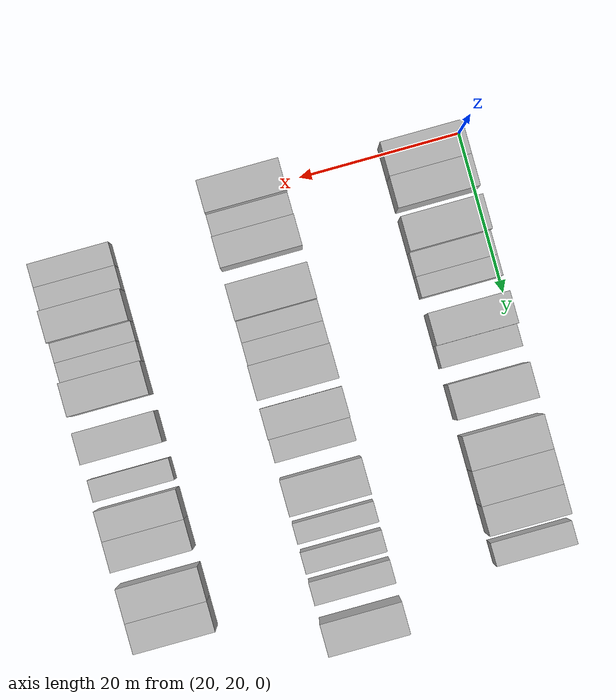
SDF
<sdf version="1.6">
 <world name="default">
  <model name="building_102">
   <static>1</static>
   <pose>25.0000 21.3331 0 0.000000 0.000000 0.000000</pose>
   <link name="link">
    <pose>0 0 4.50 0 0 0</pose>
    <collision name="collision"><geometry><box><size>10.0000 4.1596 9.0000</size></box></geometry></collision>
    <visual name="visual">
     <cast_shadows>0</cast_shadows>
     <geometry><box><size>10.0000 4.1596 9.0000</size></box></geometry>
     <material>
      <script>
       <uri>model://HANNAS_wall/materials/scripts</uri>
       <uri>model://HANNAS_wall/materials/textures</uri>
       <name>vrc/HANNAS_wall</name>
      </script>
     </material>
    </visual>
   </link>
  </model>
  <model name="building_103">
   <static>1</static>
   <pose>25.0000 25.3613 0 0.000000 0.000000 0.000000</pose>
   <link name="link">
    <pose>0 0 4.50 0 0 0</pose>
    <collision name="collision"><geometry><box><size>10.0000 3.8967 9.0000</size></box></geometry></collision>
    <visual name="visual">
     <cast_shadows>0</cast_shadows>
     <geometry><box><size>10.0000 3.8967 9.0000</size></box></geometry>
     <material>
      <script>
       <uri>model://HANNAS_wall/materials/scripts</uri>
       <uri>model://HANNAS_wall/materials/textures</uri>
       <name>vrc/HANNAS_wall</name>
      </script>
     </material>
    </visual>
   </link>
  </model>
  <model name="building_104">
   <static>1</static>
   <pose>25.0000 30.4325 0 0.000000 0.000000 0.000000</pose>
   <link name="link">
    <pose>0 0 4.50 0 0 0</pose>
    <collision name="collision"><geometry><box><size>10.0000 4.2458 9.0000</size></box></geometry></collision>
    <visual name="visual">
     <cast_shadows>0</cast_shadows>
     <geometry><box><size>10.0000 4.2458 9.0000</size></box></geometry>
     <material>
      <script>
       <uri>model://HANNAS_wall/materials/scripts</uri>
       <uri>model://HANNAS_wall/materials/textures</uri>
       <name>vrc/HANNAS_wall</name>
      </script>
     </material>
    </visual>
   </link>
  </model>
  <model name="building_105">
   <static>1</static>
   <pose>25.0000 34.0360 0 0.000000 0.000000 0.000000</pose>
   <link name="link">
    <pose>0 0 3.00 0 0 0</pose>
    <collision name="collision"><geometry><box><size>10.0000 2.9611 6.0000</size></box></geometry></collision>
    <visual name="visual">
     <cast_shadows>0</cast_shadows>
     <geometry><box><size>10.0000 2.9611 6.0000</size></box></geometry>
     <material>
      <script>
       <uri>model://HANNAS_wall/materials/scripts</uri>
       <uri>model://HANNAS_wall/materials/textures</uri>
       <name>vrc/HANNAS_wall</name>
      </script>
     </material>
    </visual>
   </link>
  </model>
  <model name="building_106">
   <static>1</static>
   <pose>25.0000 36.8038 0 0.000000 0.000000 0.000000</pose>
   <link name="link">
    <pose>0 0 3.00 0 0 0</pose>
    <collision name="collision"><geometry><box><size>10.0000 2.5746 6.0000</size></box></geometry></collision>
    <visual name="visual">
     <cast_shadows>0</cast_shadows>
     <geometry><box><size>10.0000 2.5746 6.0000</size></box></geometry>
     <material>
      <script>
       <uri>model://HANNAS_wall/materials/scripts</uri>
       <uri>model://HANNAS_wall/materials/textures</uri>
       <name>vrc/HANNAS_wall</name>
      </script>
     </material>
    </visual>
   </link>
  </model>
  <model name="building_107">
   <static>1</static>
   <pose>25.0000 42.0669 0 0.000000 0.000000 0.000000</pose>
   <link name="link">
    <pose>0 0 4.50 0 0 0</pose>
    <collision name="collision"><geometry><box><size>10.0000 3.9517 9.0000</size></box></geometry></collision>
    <visual name="visual">
     <cast_shadows>0</cast_shadows>
     <geometry><box><size>10.0000 3.9517 9.0000</size></box></geometry>
     <material>
      <script>
       <uri>model://HANNAS_wall/materials/scripts</uri>
       <uri>model://HANNAS_wall/materials/textures</uri>
       <name>vrc/HANNAS_wall</name>
      </script>
     </material>
    </visual>
   </link>
  </model>
  <model name="building_108">
   <static>1</static>
   <pose>25.0000 45.4124 0 0.000000 0.000000 0.000000</pose>
   <link name="link">
    <pose>0 0 3.00 0 0 0</pose>
    <collision name="collision"><geometry><box><size>10.0000 2.7392 6.0000</size></box></geometry></collision>
    <visual name="visual">
     <cast_shadows>0</cast_shadows>
     <geometry><box><size>10.0000 2.7392 6.0000</size></box></geometry>
     <material>
      <script>
       <uri>model://HANNAS_wall/materials/scripts</uri>
       <uri>model://HANNAS_wall/materials/textures</uri>
       <name>vrc/HANNAS_wall</name>
      </script>
     </material>
    </visual>
   </link>
  </model>
  <model name="building_109">
   <static>1</static>
   <pose>25.0000 50.9433 0 0.000000 0.000000 0.000000</pose>
   <link name="link">
    <pose>0 0 4.50 0 0 0</pose>
    <collision name="collision"><geometry><box><size>10.0000 4.3226 9.0000</size></box></geometry></collision>
    <visual name="visual">
     <cast_shadows>0</cast_shadows>
     <geometry><box><size>10.0000 4.3226 9.0000</size></box></geometry>
     <material>
      <script>
       <uri>model://HANNAS_wall/materials/scripts</uri>
       <uri>model://HANNAS_wall/materials/textures</uri>
       <name>vrc/HANNAS_wall</name>
      </script>
     </material>
    </visual>
   </link>
  </model>
  <model name="building_110">
   <static>1</static>
   <pose>25.0000 57.2245 0 0.000000 0.000000 0.000000</pose>
   <link name="link">
    <pose>0 0 4.50 0 0 0</pose>
    <collision name="collision"><geometry><box><size>10.0000 4.2398 9.0000</size></box></geometry></collision>
    <visual name="visual">
     <cast_shadows>0</cast_shadows>
     <geometry><box><size>10.0000 4.2398 9.0000</size></box></geometry>
     <material>
      <script>
       <uri>model://HANNAS_wall/materials/scripts</uri>
       <uri>model://HANNAS_wall/materials/textures</uri>
       <name>vrc/HANNAS_wall</name>
      </script>
     </material>
    </visual>
   </link>
  </model>
  <model name="building_111">
   <static>1</static>
   <pose>25.0000 61.4959 0 0.000000 0.000000 0.000000</pose>
   <link name="link">
    <pose>0 0 4.50 0 0 0</pose>
    <collision name="collision"><geometry><box><size>10.0000 4.3029 9.0000</size></box></geometry></collision>
    <visual name="visual">
     <cast_shadows>0</cast_shadows>
     <geometry><box><size>10.0000 4.3029 9.0000</size></box></geometry>
     <material>
      <script>
       <uri>model://HANNAS_wall/materials/scripts</uri>
       <uri>model://HANNAS_wall/materials/textures</uri>
       <name>vrc/HANNAS_wall</name>
      </script>
     </material>
    </visual>
   </link>
  </model>
  <model name="building_112">
   <static>1</static>
   <pose>25.0000 65.4475 0 0.000000 0.000000 0.000000</pose>
   <link name="link">
    <pose>0 0 4.50 0 0 0</pose>
    <collision name="collision"><geometry><box><size>10.0000 3.6004 9.0000</size></box></geometry></collision>
    <visual name="visual">
     <cast_shadows>0</cast_shadows>
     <geometry><box><size>10.0000 3.6004 9.0000</size></box></geometry>
     <material>
      <script>
       <uri>model://HANNAS_wall/materials/scripts</uri>
       <uri>model://HANNAS_wall/materials/textures</uri>
       <name>vrc/HANNAS_wall</name>
      </script>
     </material>
    </visual>
   </link>
  </model>
  <model name="building_113">
   <static>1</static>
   <pose>25.0000 69.6966 0 0.000000 0.000000 0.000000</pose>
   <link name="link">
    <pose>0 0 3.00 0 0 0</pose>
    <collision name="collision"><geometry><box><size>10.0000 2.8977 6.0000</size></box></geometry></collision>
    <visual name="visual">
     <cast_shadows>0</cast_shadows>
     <geometry><box><size>10.0000 2.8977 6.0000</size></box></geometry>
     <material>
      <script>
       <uri>model://HANNAS_wall/materials/scripts</uri>
       <uri>model://HANNAS_wall/materials/textures</uri>
       <name>vrc/HANNAS_wall</name>
      </script>
     </material>
    </visual>
   </link>
  </model>
  <model name="building_289">
   <static>1</static>
   <pose>47.0000 19.7661 0 0.000000 0.000000 0.000000</pose>
   <link name="link">
    <pose>0 0 4.50 0 0 0</pose>
    <collision name="collision"><geometry><box><size>10.0000 3.9609 9.0000</size></box></geometry></collision>
    <visual name="visual">
     <cast_shadows>0</cast_shadows>
     <geometry><box><size>10.0000 3.9609 9.0000</size></box></geometry>
     <material>
      <script>
       <uri>model://HANNAS_wall/materials/scripts</uri>
       <uri>model://HANNAS_wall/materials/textures</uri>
       <name>vrc/HANNAS_wall</name>
      </script>
     </material>
    </visual>
   </link>
  </model>
  <model name="building_290">
   <static>1</static>
   <pose>47.0000 23.1935 0 0.000000 0.000000 0.000000</pose>
   <link name="link">
    <pose>0 0 3.00 0 0 0</pose>
    <collision name="collision"><geometry><box><size>10.0000 2.8937 6.0000</size></box></geometry></collision>
    <visual name="visual">
     <cast_shadows>0</cast_shadows>
     <geometry><box><size>10.0000 2.8937 6.0000</size></box></geometry>
     <material>
      <script>
       <uri>model://HANNAS_wall/materials/scripts</uri>
       <uri>model://HANNAS_wall/materials/textures</uri>
       <name>vrc/HANNAS_wall</name>
      </script>
     </material>
    </visual>
   </link>
  </model>
  <model name="building_291">
   <static>1</static>
   <pose>47.0000 26.5494 0 0.000000 0.000000 0.000000</pose>
   <link name="link">
    <pose>0 0 4.50 0 0 0</pose>
    <collision name="collision"><geometry><box><size>10.0000 3.8181 9.0000</size></box></geometry></collision>
    <visual name="visual">
     <cast_shadows>0</cast_shadows>
     <geometry><box><size>10.0000 3.8181 9.0000</size></box></geometry>
     <material>
      <script>
       <uri>model://HANNAS_wall/materials/scripts</uri>
       <uri>model://HANNAS_wall/materials/textures</uri>
       <name>vrc/HANNAS_wall</name>
      </script>
     </material>
    </visual>
   </link>
  </model>
  <model name="building_292">
   <static>1</static>
   <pose>47.0000 32.6739 0 0.000000 0.000000 0.000000</pose>
   <link name="link">
    <pose>0 0 4.50 0 0 0</pose>
    <collision name="collision"><geometry><box><size>10.0000 4.4308 9.0000</size></box></geometry></collision>
    <visual name="visual">
     <cast_shadows>0</cast_shadows>
     <geometry><box><size>10.0000 4.4308 9.0000</size></box></geometry>
     <material>
      <script>
       <uri>model://HANNAS_wall/materials/scripts</uri>
       <uri>model://HANNAS_wall/materials/textures</uri>
       <name>vrc/HANNAS_wall</name>
      </script>
     </material>
    </visual>
   </link>
  </model>
  <model name="building_293">
   <static>1</static>
   <pose>47.0000 36.2097 0 0.000000 0.000000 0.000000</pose>
   <link name="link">
    <pose>0 0 3.00 0 0 0</pose>
    <collision name="collision"><geometry><box><size>10.0000 2.6408 6.0000</size></box></geometry></collision>
    <visual name="visual">
     <cast_shadows>0</cast_shadows>
     <geometry><box><size>10.0000 2.6408 6.0000</size></box></geometry>
     <material>
      <script>
       <uri>model://HANNAS_wall/materials/scripts</uri>
       <uri>model://HANNAS_wall/materials/textures</uri>
       <name>vrc/HANNAS_wall</name>
      </script>
     </material>
    </visual>
   </link>
  </model>
  <model name="building_294">
   <static>1</static>
   <pose>47.0000 38.9419 0 0.000000 0.000000 0.000000</pose>
   <link name="link">
    <pose>0 0 3.00 0 0 0</pose>
    <collision name="collision"><geometry><box><size>10.0000 2.8237 6.0000</size></box></geometry></collision>
    <visual name="visual">
     <cast_shadows>0</cast_shadows>
     <geometry><box><size>10.0000 2.8237 6.0000</size></box></geometry>
     <material>
      <script>
       <uri>model://HANNAS_wall/materials/scripts</uri>
       <uri>model://HANNAS_wall/materials/textures</uri>
       <name>vrc/HANNAS_wall</name>
      </script>
     </material>
    </visual>
   </link>
  </model>
  <model name="building_295">
   <static>1</static>
   <pose>47.0000 42.4806 0 0.000000 0.000000 0.000000</pose>
   <link name="link">
    <pose>0 0 4.50 0 0 0</pose>
    <collision name="collision"><geometry><box><size>10.0000 4.2537 9.0000</size></box></geometry></collision>
    <visual name="visual">
     <cast_shadows>0</cast_shadows>
     <geometry><box><size>10.0000 4.2537 9.0000</size></box></geometry>
     <material>
      <script>
       <uri>model://HANNAS_wall/materials/scripts</uri>
       <uri>model://HANNAS_wall/materials/textures</uri>
       <name>vrc/HANNAS_wall</name>
      </script>
     </material>
    </visual>
   </link>
  </model>
  <model name="building_296">
   <static>1</static>
   <pose>47.0000 47.4840 0 0.000000 0.000000 0.000000</pose>
   <link name="link">
    <pose>0 0 4.50 0 0 0</pose>
    <collision name="collision"><geometry><box><size>10.0000 3.7531 9.0000</size></box></geometry></collision>
    <visual name="visual">
     <cast_shadows>0</cast_shadows>
     <geometry><box><size>10.0000 3.7531 9.0000</size></box></geometry>
     <material>
      <script>
       <uri>model://HANNAS_wall/materials/scripts</uri>
       <uri>model://HANNAS_wall/materials/textures</uri>
       <name>vrc/HANNAS_wall</name>
      </script>
     </material>
    </visual>
   </link>
  </model>
  <model name="building_297">
   <static>1</static>
   <pose>47.0000 50.8151 0 0.000000 0.000000 0.000000</pose>
   <link name="link">
    <pose>0 0 3.00 0 0 0</pose>
    <collision name="collision"><geometry><box><size>10.0000 2.9092 6.0000</size></box></geometry></collision>
    <visual name="visual">
     <cast_shadows>0</cast_shadows>
     <geometry><box><size>10.0000 2.9092 6.0000</size></box></geometry>
     <material>
      <script>
       <uri>model://HANNAS_wall/materials/scripts</uri>
       <uri>model://HANNAS_wall/materials/textures</uri>
       <name>vrc/HANNAS_wall</name>
      </script>
     </material>
    </visual>
   </link>
  </model>
  <model name="building_298">
   <static>1</static>
   <pose>47.0000 56.5029 0 0.000000 0.000000 0.000000</pose>
   <link name="link">
    <pose>0 0 4.50 0 0 0</pose>
    <collision name="collision"><geometry><box><size>10.0000 4.4664 9.0000</size></box></geometry></collision>
    <visual name="visual">
     <cast_shadows>0</cast_shadows>
     <geometry><box><size>10.0000 4.4664 9.0000</size></box></geometry>
     <material>
      <script>
       <uri>model://HANNAS_wall/materials/scripts</uri>
       <uri>model://HANNAS_wall/materials/textures</uri>
       <name>vrc/HANNAS_wall</name>
      </script>
     </material>
    </visual>
   </link>
  </model>
  <model name="building_299">
   <static>1</static>
   <pose>47.0000 61.0073 0 0.000000 0.000000 0.000000</pose>
   <link name="link">
    <pose>0 0 3.00 0 0 0</pose>
    <collision name="collision"><geometry><box><size>10.0000 2.5423 6.0000</size></box></geometry></collision>
    <visual name="visual">
     <cast_shadows>0</cast_shadows>
     <geometry><box><size>10.0000 2.5423 6.0000</size></box></geometry>
     <material>
      <script>
       <uri>model://HANNAS_wall/materials/scripts</uri>
       <uri>model://HANNAS_wall/materials/textures</uri>
       <name>vrc/HANNAS_wall</name>
      </script>
     </material>
    </visual>
   </link>
  </model>
  <model name="building_300">
   <static>1</static>
   <pose>47.0000 64.6131 0 0.000000 0.000000 0.000000</pose>
   <link name="link">
    <pose>0 0 3.00 0 0 0</pose>
    <collision name="collision"><geometry><box><size>10.0000 2.6695 6.0000</size></box></geometry></collision>
    <visual name="visual">
     <cast_shadows>0</cast_shadows>
     <geometry><box><size>10.0000 2.6695 6.0000</size></box></geometry>
     <material>
      <script>
       <uri>model://HANNAS_wall/materials/scripts</uri>
       <uri>model://HANNAS_wall/materials/textures</uri>
       <name>vrc/HANNAS_wall</name>
      </script>
     </material>
    </visual>
   </link>
  </model>
  <model name="building_301">
   <static>1</static>
   <pose>47.0000 68.3853 0 0.000000 0.000000 0.000000</pose>
   <link name="link">
    <pose>0 0 3.00 0 0 0</pose>
    <collision name="collision"><geometry><box><size>10.0000 2.8747 6.0000</size></box></geometry></collision>
    <visual name="visual">
     <cast_shadows>0</cast_shadows>
     <geometry><box><size>10.0000 2.8747 6.0000</size></box></geometry>
     <material>
      <script>
       <uri>model://HANNAS_wall/materials/scripts</uri>
       <uri>model://HANNAS_wall/materials/textures</uri>
       <name>vrc/HANNAS_wall</name>
      </script>
     </material>
    </visual>
   </link>
  </model>
  <model name="building_302">
   <static>1</static>
   <pose>47.0000 73.8133 0 0.000000 0.000000 0.000000</pose>
   <link name="link">
    <pose>0 0 4.50 0 0 0</pose>
    <collision name="collision"><geometry><box><size>10.0000 3.9815 9.0000</size></box></geometry></collision>
    <visual name="visual">
     <cast_shadows>0</cast_shadows>
     <geometry><box><size>10.0000 3.9815 9.0000</size></box></geometry>
     <material>
      <script>
       <uri>model://HANNAS_wall/materials/scripts</uri>
       <uri>model://HANNAS_wall/materials/textures</uri>
       <name>vrc/HANNAS_wall</name>
      </script>
     </material>
    </visual>
   </link>
  </model>
  <model name="building_478">
   <static>1</static>
   <pose>69.0000 23.1369 0 0.000000 0.000000 0.000000</pose>
   <link name="link">
    <pose>0 0 3.00 0 0 0</pose>
    <collision name="collision"><geometry><box><size>10.0000 2.8941 6.0000</size></box></geometry></collision>
    <visual name="visual">
     <cast_shadows>0</cast_shadows>
     <geometry><box><size>10.0000 2.8941 6.0000</size></box></geometry>
     <material>
      <script>
       <uri>model://HANNAS_wall/materials/scripts</uri>
       <uri>model://HANNAS_wall/materials/textures</uri>
       <name>vrc/HANNAS_wall</name>
      </script>
     </material>
    </visual>
   </link>
  </model>
  <model name="building_479">
   <static>1</static>
   <pose>69.0000 26.0733 0 0.000000 0.000000 0.000000</pose>
   <link name="link">
    <pose>0 0 3.00 0 0 0</pose>
    <collision name="collision"><geometry><box><size>10.0000 2.9788 6.0000</size></box></geometry></collision>
    <visual name="visual">
     <cast_shadows>0</cast_shadows>
     <geometry><box><size>10.0000 2.9788 6.0000</size></box></geometry>
     <material>
      <script>
       <uri>model://HANNAS_wall/materials/scripts</uri>
       <uri>model://HANNAS_wall/materials/textures</uri>
       <name>vrc/HANNAS_wall</name>
      </script>
     </material>
    </visual>
   </link>
  </model>
  <model name="building_480">
   <static>1</static>
   <pose>69.0000 29.4989 0 0.000000 0.000000 0.000000</pose>
   <link name="link">
    <pose>0 0 4.50 0 0 0</pose>
    <collision name="collision"><geometry><box><size>10.0000 3.8723 9.0000</size></box></geometry></collision>
    <visual name="visual">
     <cast_shadows>0</cast_shadows>
     <geometry><box><size>10.0000 3.8723 9.0000</size></box></geometry>
     <material>
      <script>
       <uri>model://HANNAS_wall/materials/scripts</uri>
       <uri>model://HANNAS_wall/materials/textures</uri>
       <name>vrc/HANNAS_wall</name>
      </script>
     </material>
    </visual>
   </link>
  </model>
  <model name="building_481">
   <static>1</static>
   <pose>69.0000 32.6486 0 0.000000 0.000000 0.000000</pose>
   <link name="link">
    <pose>0 0 3.00 0 0 0</pose>
    <collision name="collision"><geometry><box><size>10.0000 2.4273 6.0000</size></box></geometry></collision>
    <visual name="visual">
     <cast_shadows>0</cast_shadows>
     <geometry><box><size>10.0000 2.4273 6.0000</size></box></geometry>
     <material>
      <script>
       <uri>model://HANNAS_wall/materials/scripts</uri>
       <uri>model://HANNAS_wall/materials/textures</uri>
       <name>vrc/HANNAS_wall</name>
      </script>
     </material>
    </visual>
   </link>
  </model>
  <model name="building_482">
   <static>1</static>
   <pose>69.0000 35.1082 0 0.000000 0.000000 0.000000</pose>
   <link name="link">
    <pose>0 0 3.00 0 0 0</pose>
    <collision name="collision"><geometry><box><size>10.0000 2.4920 6.0000</size></box></geometry></collision>
    <visual name="visual">
     <cast_shadows>0</cast_shadows>
     <geometry><box><size>10.0000 2.4920 6.0000</size></box></geometry>
     <material>
      <script>
       <uri>model://HANNAS_wall/materials/scripts</uri>
       <uri>model://HANNAS_wall/materials/textures</uri>
       <name>vrc/HANNAS_wall</name>
      </script>
     </material>
    </visual>
   </link>
  </model>
  <model name="building_483">
   <static>1</static>
   <pose>69.0000 38.3989 0 0.000000 0.000000 0.000000</pose>
   <link name="link">
    <pose>0 0 4.50 0 0 0</pose>
    <collision name="collision"><geometry><box><size>10.0000 4.0894 9.0000</size></box></geometry></collision>
    <visual name="visual">
     <cast_shadows>0</cast_shadows>
     <geometry><box><size>10.0000 4.0894 9.0000</size></box></geometry>
     <material>
      <script>
       <uri>model://HANNAS_wall/materials/scripts</uri>
       <uri>model://HANNAS_wall/materials/textures</uri>
       <name>vrc/HANNAS_wall</name>
      </script>
     </material>
    </visual>
   </link>
  </model>
  <model name="building_484">
   <static>1</static>
   <pose>69.0000 44.3607 0 0.000000 0.000000 0.000000</pose>
   <link name="link">
    <pose>0 0 4.50 0 0 0</pose>
    <collision name="collision"><geometry><box><size>10.0000 3.8343 9.0000</size></box></geometry></collision>
    <visual name="visual">
     <cast_shadows>0</cast_shadows>
     <geometry><box><size>10.0000 3.8343 9.0000</size></box></geometry>
     <material>
      <script>
       <uri>model://HANNAS_wall/materials/scripts</uri>
       <uri>model://HANNAS_wall/materials/textures</uri>
       <name>vrc/HANNAS_wall</name>
      </script>
     </material>
    </visual>
   </link>
  </model>
  <model name="building_485">
   <static>1</static>
   <pose>69.0000 49.6259 0 0.000000 0.000000 0.000000</pose>
   <link name="link">
    <pose>0 0 3.00 0 0 0</pose>
    <collision name="collision"><geometry><box><size>10.0000 2.6961 6.0000</size></box></geometry></collision>
    <visual name="visual">
     <cast_shadows>0</cast_shadows>
     <geometry><box><size>10.0000 2.6961 6.0000</size></box></geometry>
     <material>
      <script>
       <uri>model://HANNAS_wall/materials/scripts</uri>
       <uri>model://HANNAS_wall/materials/textures</uri>
       <name>vrc/HANNAS_wall</name>
      </script>
     </material>
    </visual>
   </link>
  </model>
  <model name="building_486">
   <static>1</static>
   <pose>69.0000 53.8176 0 0.000000 0.000000 0.000000</pose>
   <link name="link">
    <pose>0 0 4.50 0 0 0</pose>
    <collision name="collision"><geometry><box><size>10.0000 3.6872 9.0000</size></box></geometry></collision>
    <visual name="visual">
     <cast_shadows>0</cast_shadows>
     <geometry><box><size>10.0000 3.6872 9.0000</size></box></geometry>
     <material>
      <script>
       <uri>model://HANNAS_wall/materials/scripts</uri>
       <uri>model://HANNAS_wall/materials/textures</uri>
       <name>vrc/HANNAS_wall</name>
      </script>
     </material>
    </visual>
   </link>
  </model>
  <model name="building_487">
   <static>1</static>
   <pose>69.0000 57.5370 0 0.000000 0.000000 0.000000</pose>
   <link name="link">
    <pose>0 0 4.50 0 0 0</pose>
    <collision name="collision"><geometry><box><size>10.0000 3.7514 9.0000</size></box></geometry></collision>
    <visual name="visual">
     <cast_shadows>0</cast_shadows>
     <geometry><box><size>10.0000 3.7514 9.0000</size></box></geometry>
     <material>
      <script>
       <uri>model://HANNAS_wall/materials/scripts</uri>
       <uri>model://HANNAS_wall/materials/textures</uri>
       <name>vrc/HANNAS_wall</name>
      </script>
     </material>
    </visual>
   </link>
  </model>
  <model name="building_488">
   <static>1</static>
   <pose>69.0000 63.5178 0 0.000000 0.000000 0.000000</pose>
   <link name="link">
    <pose>0 0 4.50 0 0 0</pose>
    <collision name="collision"><geometry><box><size>10.0000 4.2102 9.0000</size></box></geometry></collision>
    <visual name="visual">
     <cast_shadows>0</cast_shadows>
     <geometry><box><size>10.0000 4.2102 9.0000</size></box></geometry>
     <material>
      <script>
       <uri>model://HANNAS_wall/materials/scripts</uri>
       <uri>model://HANNAS_wall/materials/textures</uri>
       <name>vrc/HANNAS_wall</name>
      </script>
     </material>
    </visual>
   </link>
  </model>
  <model name="building_489">
   <static>1</static>
   <pose>69.0000 67.4903 0 0.000000 0.000000 0.000000</pose>
   <link name="link">
    <pose>0 0 4.50 0 0 0</pose>
    <collision name="collision"><geometry><box><size>10.0000 3.7350 9.0000</size></box></geometry></collision>
    <visual name="visual">
     <cast_shadows>0</cast_shadows>
     <geometry><box><size>10.0000 3.7350 9.0000</size></box></geometry>
     <material>
      <script>
       <uri>model://HANNAS_wall/materials/scripts</uri>
       <uri>model://HANNAS_wall/materials/textures</uri>
       <name>vrc/HANNAS_wall</name>
      </script>
     </material>
    </visual>
   </link>
  </model>
 </world>
</sdf>
